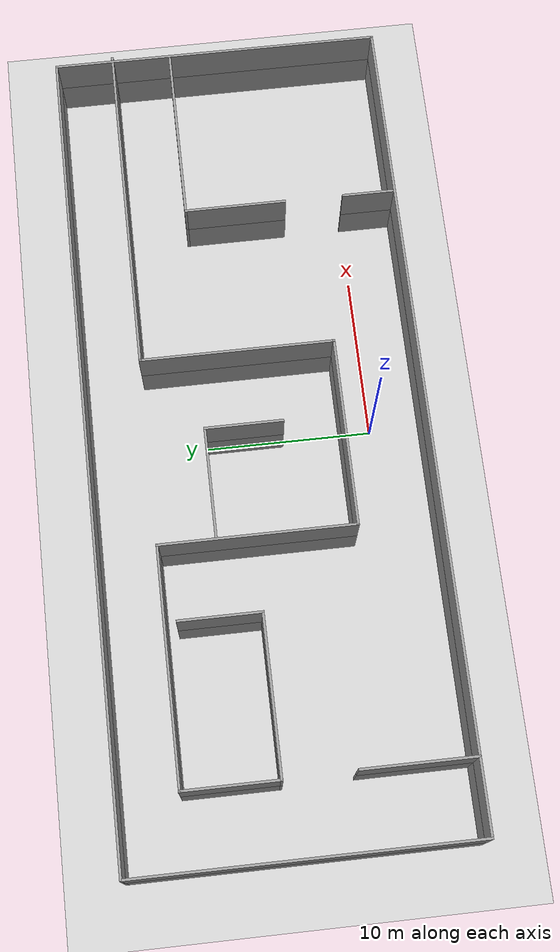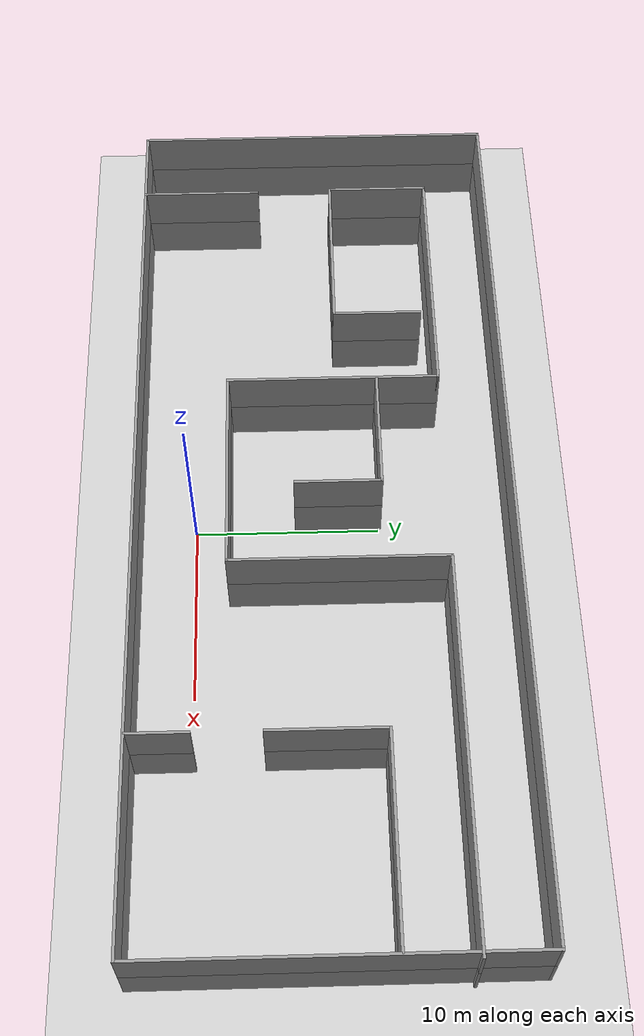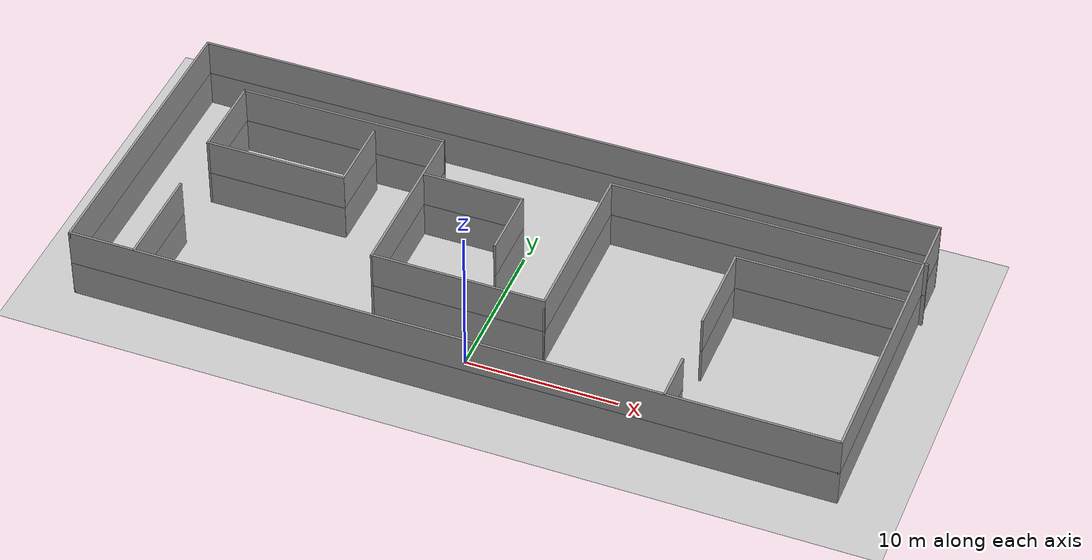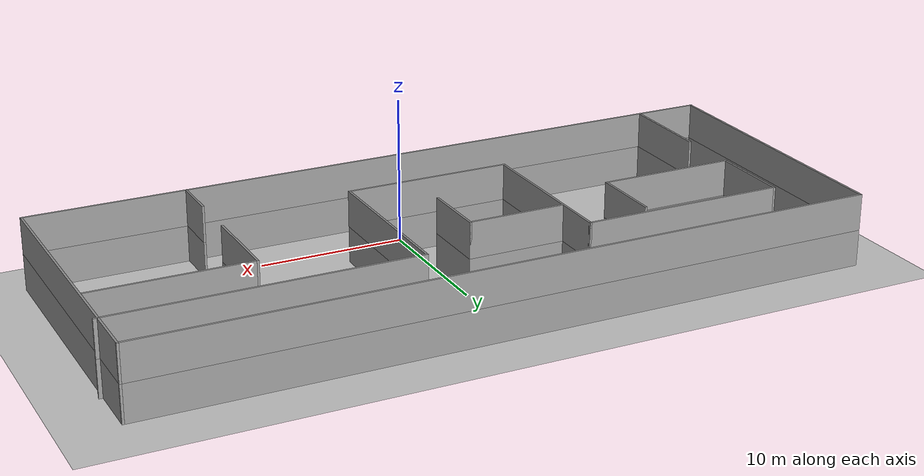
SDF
<sdf version="1.6">
 <world name="default">
  <light name="sun" type="directional">
   <pose>0 0 10 0 -0 0</pose>
   <diffuse>0.8 0.8 0.8 1</diffuse>
   <specular>0.2 0.2 0.2 1</specular>
   <attenuation>
    <range>1000</range>
    <constant>0.9</constant>
    <linear>0.01</linear>
    <quadratic>0.001</quadratic>
   </attenuation>
   <direction>-0.5 0.1 -0.9</direction>
  </light>
  <model name="ground_plane">
   <static>1</static>
   <link name="link">
    <collision name="collision">
     <geometry><plane><normal>0 0 1</normal><size>100 100</size></plane></geometry>
     <surface><friction><ode><mu>100</mu><mu2>50</mu2></ode></friction></surface>
    </collision>
    <visual name="visual">
     <cast_shadows>0</cast_shadows>
     <geometry><plane><normal>0 0 1</normal><size>100 100</size></plane></geometry>
     <material>
      <script><uri>file://media/materials/scripts/gazebo.material</uri><name>Gazebo/Grey</name></script>
     </material>
    </visual>
   </link>
  </model>
  <gravity>0 0 -9.8</gravity>
  <magnetic_field>6e-06 2.3e-05 -4.2e-05</magnetic_field>
  <atmosphere type="adiabatic"/>
  <physics name="default_physics" default="0" type="ode">
   <max_step_size>0.001</max_step_size>
   <real_time_factor>1</real_time_factor>
   <real_time_update_rate>1000</real_time_update_rate>
  </physics>
  <scene><ambient>0.4 0.4 0.4 1</ambient><background>0.7 0.7 0.7 1</background><shadows>1</shadows></scene>
  <audio><device>default</device></audio>
  <spherical_coordinates>
   <surface_model>EARTH_WGS84</surface_model>
   <latitude_deg>0</latitude_deg>
   <longitude_deg>0</longitude_deg>
   <elevation>0</elevation>
   <heading_deg>0</heading_deg>
  </spherical_coordinates>
  <model name="ExploringOffice5">
   <pose>0 7 0 0 -0 0</pose>
   <link name="Wall_0">
    <collision name="Wall_0_Collision">
     <geometry><box><size>50 0.15 2.5</size></box></geometry>
     <pose>0 0 1.25 0 -0 0</pose>
    </collision>
    <visual name="Wall_0_Visual">
     <pose>0 0 1.25 0 -0 0</pose>
     <geometry><box><size>50 0.15 2.5</size></box></geometry>
     <material>
      <script><uri>file://media/materials/scripts/gazebo.material</uri><name>Gazebo/Grey</name></script>
      <ambient>1 1 1 1</ambient>
     </material>
     <meta><layer>0</layer></meta>
    </visual>
    <pose>-0.122376 -10.05 0 0 -0 0</pose>
   </link>
   <link name="Wall_1">
    <collision name="Wall_1_Collision">
     <geometry><box><size>20.25 0.15 2.5</size></box></geometry>
     <pose>0 0 1.25 0 -0 0</pose>
    </collision>
    <visual name="Wall_1_Visual">
     <pose>0 0 1.25 0 -0 0</pose>
     <geometry><box><size>20.25 0.15 2.5</size></box></geometry>
     <material>
      <script><uri>file://media/materials/scripts/gazebo.material</uri><name>Gazebo/Grey</name></script>
      <ambient>1 1 1 1</ambient>
     </material>
     <meta><layer>0</layer></meta>
    </visual>
    <pose>24.8026 -0 0 0 -0 1.5708</pose>
   </link>
   <link name="Wall_10">
    <collision name="Wall_10_Collision">
     <geometry><box><size>5.75 0.15 2.5</size></box></geometry>
     <pose>0 0 1.25 0 -0 0</pose>
    </collision>
    <visual name="Wall_10_Visual">
     <pose>0 0 1.25 0 -0 0</pose>
     <geometry><box><size>5.75 0.15 2.5</size></box></geometry>
     <material>
      <script><uri>file://media/materials/scripts/gazebo.material</uri><name>Gazebo/Grey</name></script>
      <ambient>1 1 1 1</ambient>
     </material>
     <meta><layer>0</layer></meta>
    </visual>
    <pose>-20.7526 3.69277 0 0 -0 1.5708</pose>
   </link>
   <link name="Wall_11">
    <collision name="Wall_11_Collision">
     <geometry><box><size>14 0.15 2.5</size></box></geometry>
     <pose>0 0 1.25 0 -0 0</pose>
    </collision>
    <visual name="Wall_11_Visual">
     <pose>0 0 1.25 0 -0 0</pose>
     <geometry><box><size>14 0.15 2.5</size></box></geometry>
     <material>
      <script><uri>file://media/materials/scripts/gazebo.material</uri><name>Gazebo/Grey</name></script>
      <ambient>1 1 1 1</ambient>
     </material>
     <meta><layer>0</layer></meta>
    </visual>
    <pose>-13.8276 6.49277 0 0 -0 0</pose>
   </link>
   <link name="Wall_12">
    <collision name="Wall_12_Collision">
     <geometry><box><size>11.75 0.15 2.5</size></box></geometry>
     <pose>0 0 1.25 0 -0 0</pose>
    </collision>
    <visual name="Wall_12_Visual">
     <pose>0 0 1.25 0 -0 0</pose>
     <geometry><box><size>11.75 0.15 2.5</size></box></geometry>
     <material>
      <script><uri>file://media/materials/scripts/gazebo.material</uri><name>Gazebo/Grey</name></script>
      <ambient>1 1 1 1</ambient>
     </material>
     <meta><layer>0</layer></meta>
    </visual>
    <pose>-6.90262 0.692768 0 0 -0 -1.5708</pose>
   </link>
   <link name="Wall_13">
    <collision name="Wall_13_Collision">
     <geometry><box><size>11.5 0.15 2.5</size></box></geometry>
     <pose>0 0 1.25 0 -0 0</pose>
    </collision>
    <visual name="Wall_13_Visual">
     <pose>0 0 1.25 0 -0 0</pose>
     <geometry><box><size>11.5 0.15 2.5</size></box></geometry>
     <material>
      <script><uri>file://media/materials/scripts/gazebo.material</uri><name>Gazebo/Grey</name></script>
      <ambient>1 1 1 1</ambient>
     </material>
     <meta><layer>0</layer></meta>
    </visual>
    <pose>-1.22762 -5.10723 0 0 -0 0</pose>
   </link>
   <link name="Wall_14">
    <collision name="Wall_14_Collision">
     <geometry><box><size>11.75 0.15 2.5</size></box></geometry>
     <pose>0 0 1.25 0 -0 0</pose>
    </collision>
    <visual name="Wall_14_Visual">
     <pose>0 0 1.25 0 -0 0</pose>
     <geometry><box><size>11.75 0.15 2.5</size></box></geometry>
     <material>
      <script><uri>file://media/materials/scripts/gazebo.material</uri><name>Gazebo/Grey</name></script>
      <ambient>1 1 1 1</ambient>
     </material>
     <meta><layer>0</layer></meta>
    </visual>
    <pose>4.44738 0.692768 0 0 -0 1.5708</pose>
   </link>
   <link name="Wall_15">
    <collision name="Wall_15_Collision">
     <geometry><box><size>20.75 0.15 2.5</size></box></geometry>
     <pose>0 0 1.25 0 -0 0</pose>
    </collision>
    <visual name="Wall_15_Visual">
     <pose>0 0 1.25 0 -0 0</pose>
     <geometry><box><size>20.75 0.15 2.5</size></box></geometry>
     <material>
      <script><uri>file://media/materials/scripts/gazebo.material</uri><name>Gazebo/Grey</name></script>
      <ambient>1 1 1 1</ambient>
     </material>
     <meta><layer>0</layer></meta>
    </visual>
    <pose>14.7474 6.49277 0 0 -0 0</pose>
   </link>
   <link name="Wall_17">
    <collision name="Wall_17_Collision">
     <geometry><box><size>6.75 0.15 2.5</size></box></geometry>
     <pose>0 0 1.25 0 -0 0</pose>
    </collision>
    <visual name="Wall_17_Visual">
     <pose>0 0 1.25 0 -0 0</pose>
     <geometry><box><size>6.75 0.15 2.5</size></box></geometry>
     <material>
      <script><uri>file://media/materials/scripts/gazebo.material</uri><name>Gazebo/Grey</name></script>
      <ambient>1 1 1 1</ambient>
     </material>
     <meta><layer>0</layer></meta>
    </visual>
    <pose>-3.50141 3.08637 0 0 -0 0</pose>
   </link>
   <link name="Wall_18">
    <collision name="Wall_18_Collision">
     <geometry><box><size>4.75 0.15 2.5</size></box></geometry>
     <pose>0 0 1.25 0 -0 0</pose>
    </collision>
    <visual name="Wall_18_Visual">
     <pose>0 0 1.25 0 -0 0</pose>
     <geometry><box><size>4.75 0.15 2.5</size></box></geometry>
     <material>
      <script><uri>file://media/materials/scripts/gazebo.material</uri><name>Gazebo/Grey</name></script>
      <ambient>1 1 1 1</ambient>
     </material>
     <meta><layer>0</layer></meta>
    </visual>
    <pose>-0.20141 0.786371 0 0 -0 -1.5708</pose>
   </link>
   <link name="Wall_2">
    <collision name="Wall_2_Collision">
     <geometry><box><size>50 0.15 2.5</size></box></geometry>
     <pose>0 0 1.25 0 -0 0</pose>
    </collision>
    <visual name="Wall_2_Visual">
     <pose>0 0 1.25 0 -0 0</pose>
     <geometry><box><size>50 0.15 2.5</size></box></geometry>
     <material>
      <script><uri>file://media/materials/scripts/gazebo.material</uri><name>Gazebo/Grey</name></script>
      <ambient>1 1 1 1</ambient>
     </material>
     <meta><layer>0</layer></meta>
    </visual>
    <pose>-0.122376 10.05 0 0 -0 3.14159</pose>
   </link>
   <link name="Wall_20">
    <collision name="Wall_20_Collision">
     <geometry><box><size>11 0.15 2.5</size></box></geometry>
     <pose>0 0 1.25 0 -0 0</pose>
    </collision>
    <visual name="Wall_20_Visual">
     <pose>0 0 1.25 0 -0 0</pose>
     <geometry><box><size>11 0.15 2.5</size></box></geometry>
     <material>
      <script><uri>file://media/materials/scripts/gazebo.material</uri><name>Gazebo/Grey</name></script>
      <ambient>1 1 1 1</ambient>
     </material>
     <meta><layer>0</layer></meta>
    </visual>
    <pose>19.3291 2.87236 0 0 -0 0</pose>
   </link>
   <link name="Wall_22">
    <collision name="Wall_22_Collision">
     <geometry><box><size>6.25 0.15 2.5</size></box></geometry>
     <pose>0 0 1.25 0 -0 0</pose>
    </collision>
    <visual name="Wall_22_Visual">
     <pose>0 0 1.25 0 -0 0</pose>
     <geometry><box><size>6.25 0.15 2.5</size></box></geometry>
     <material>
      <script><uri>file://media/materials/scripts/gazebo.material</uri><name>Gazebo/Grey</name></script>
      <ambient>1 1 1 1</ambient>
     </material>
     <meta><layer>0</layer></meta>
    </visual>
    <pose>13.9041 -0.177639 0 0 -0 -1.5708</pose>
   </link>
   <link name="Wall_26">
    <collision name="Wall_26_Collision">
     <geometry><box><size>3.25 0.15 2.5</size></box></geometry>
     <pose>0 0 1.25 0 -0 0</pose>
    </collision>
    <visual name="Wall_26_Visual">
     <pose>0 0 1.25 0 -0 0</pose>
     <geometry><box><size>3.25 0.15 2.5</size></box></geometry>
     <material>
      <script><uri>file://media/materials/scripts/gazebo.material</uri><name>Gazebo/Grey</name></script>
      <ambient>1 1 1 1</ambient>
     </material>
     <meta><layer>0</layer></meta>
    </visual>
    <pose>13.898 -8.42714 0 0 -0 -1.5708</pose>
   </link>
   <link name="Wall_5">
    <collision name="Wall_5_Collision">
     <geometry><box><size>20.25 0.15 2.5</size></box></geometry>
     <pose>0 0 1.25 0 -0 0</pose>
    </collision>
    <visual name="Wall_5_Visual">
     <pose>0 0 1.25 0 -0 0</pose>
     <geometry><box><size>20.25 0.15 2.5</size></box></geometry>
     <material>
      <script><uri>file://media/materials/scripts/gazebo.material</uri><name>Gazebo/Grey</name></script>
      <ambient>1 1 1 1</ambient>
     </material>
     <meta><layer>0</layer></meta>
    </visual>
    <pose>-25.0474 -0 0 0 -0 -1.5708</pose>
   </link>
   <link name="Wall_7">
    <collision name="Wall_7_Collision">
     <geometry><box><size>6.75 0.15 2.5</size></box></geometry>
     <pose>0 0 1.25 0 -0 0</pose>
    </collision>
    <visual name="Wall_7_Visual">
     <pose>0 0 1.25 0 -0 0</pose>
     <geometry><box><size>6.75 0.15 2.5</size></box></geometry>
     <material>
      <script><uri>file://media/materials/scripts/gazebo.material</uri><name>Gazebo/Grey</name></script>
      <ambient>1 1 1 1</ambient>
     </material>
     <meta><layer>0</layer></meta>
    </visual>
    <pose>-20.6586 -6.72174 0 0 -0 1.5708</pose>
   </link>
   <link name="Wall_9">
    <collision name="Wall_9_Collision">
     <geometry><box><size>9.5 0.15 2.5</size></box></geometry>
     <pose>0 0 1.25 0 -0 0</pose>
    </collision>
    <visual name="Wall_9_Visual">
     <pose>0 0 1.25 0 -0 0</pose>
     <geometry><box><size>9.5 0.15 2.5</size></box></geometry>
     <material>
      <script><uri>file://media/materials/scripts/gazebo.material</uri><name>Gazebo/Grey</name></script>
      <ambient>1 1 1 1</ambient>
     </material>
     <meta><layer>0</layer></meta>
    </visual>
    <pose>-16.0776 0.892768 0 0 -0 3.14159</pose>
   </link>
   <static>1</static>
  </model>
  <model name="ExploringOffice5_0">
   <pose>0 7 2.5 0 -0 0</pose>
   <link name="Wall_0">
    <collision name="Wall_0_Collision">
     <geometry><box><size>50 0.15 2.5</size></box></geometry>
     <pose>0 0 1.25 0 -0 0</pose>
    </collision>
    <visual name="Wall_0_Visual">
     <pose>0 0 1.25 0 -0 0</pose>
     <geometry><box><size>50 0.15 2.5</size></box></geometry>
     <material>
      <script><uri>file://media/materials/scripts/gazebo.material</uri><name>Gazebo/Grey</name></script>
      <ambient>1 1 1 1</ambient>
     </material>
     <meta><layer>0</layer></meta>
    </visual>
    <pose>-0.122376 -10.05 0 0 -0 0</pose>
   </link>
   <link name="Wall_1">
    <collision name="Wall_1_Collision">
     <geometry><box><size>20.25 0.15 2.5</size></box></geometry>
     <pose>0 0 1.25 0 -0 0</pose>
    </collision>
    <visual name="Wall_1_Visual">
     <pose>0 0 1.25 0 -0 0</pose>
     <geometry><box><size>20.25 0.15 2.5</size></box></geometry>
     <material>
      <script><uri>file://media/materials/scripts/gazebo.material</uri><name>Gazebo/Grey</name></script>
      <ambient>1 1 1 1</ambient>
     </material>
     <meta><layer>0</layer></meta>
    </visual>
    <pose>24.8026 -0 0 0 -0 1.5708</pose>
   </link>
   <link name="Wall_10">
    <collision name="Wall_10_Collision">
     <geometry><box><size>5.75 0.15 2.5</size></box></geometry>
     <pose>0 0 1.25 0 -0 0</pose>
    </collision>
    <visual name="Wall_10_Visual">
     <pose>0 0 1.25 0 -0 0</pose>
     <geometry><box><size>5.75 0.15 2.5</size></box></geometry>
     <material>
      <script><uri>file://media/materials/scripts/gazebo.material</uri><name>Gazebo/Grey</name></script>
      <ambient>1 1 1 1</ambient>
     </material>
     <meta><layer>0</layer></meta>
    </visual>
    <pose>-20.7526 3.69277 0 0 -0 1.5708</pose>
   </link>
   <link name="Wall_11">
    <collision name="Wall_11_Collision">
     <geometry><box><size>14 0.15 2.5</size></box></geometry>
     <pose>0 0 1.25 0 -0 0</pose>
    </collision>
    <visual name="Wall_11_Visual">
     <pose>0 0 1.25 0 -0 0</pose>
     <geometry><box><size>14 0.15 2.5</size></box></geometry>
     <material>
      <script><uri>file://media/materials/scripts/gazebo.material</uri><name>Gazebo/Grey</name></script>
      <ambient>1 1 1 1</ambient>
     </material>
     <meta><layer>0</layer></meta>
    </visual>
    <pose>-13.8276 6.49277 0 0 -0 0</pose>
   </link>
   <link name="Wall_12">
    <collision name="Wall_12_Collision">
     <geometry><box><size>11.75 0.15 2.5</size></box></geometry>
     <pose>0 0 1.25 0 -0 0</pose>
    </collision>
    <visual name="Wall_12_Visual">
     <pose>0 0 1.25 0 -0 0</pose>
     <geometry><box><size>11.75 0.15 2.5</size></box></geometry>
     <material>
      <script><uri>file://media/materials/scripts/gazebo.material</uri><name>Gazebo/Grey</name></script>
      <ambient>1 1 1 1</ambient>
     </material>
     <meta><layer>0</layer></meta>
    </visual>
    <pose>-6.90262 0.692768 0 0 -0 -1.5708</pose>
   </link>
   <link name="Wall_13">
    <collision name="Wall_13_Collision">
     <geometry><box><size>11.5 0.15 2.5</size></box></geometry>
     <pose>0 0 1.25 0 -0 0</pose>
    </collision>
    <visual name="Wall_13_Visual">
     <pose>0 0 1.25 0 -0 0</pose>
     <geometry><box><size>11.5 0.15 2.5</size></box></geometry>
     <material>
      <script><uri>file://media/materials/scripts/gazebo.material</uri><name>Gazebo/Grey</name></script>
      <ambient>1 1 1 1</ambient>
     </material>
     <meta><layer>0</layer></meta>
    </visual>
    <pose>-1.22762 -5.10723 0 0 -0 0</pose>
   </link>
   <link name="Wall_14">
    <collision name="Wall_14_Collision">
     <geometry><box><size>11.75 0.15 2.5</size></box></geometry>
     <pose>0 0 1.25 0 -0 0</pose>
    </collision>
    <visual name="Wall_14_Visual">
     <pose>0 0 1.25 0 -0 0</pose>
     <geometry><box><size>11.75 0.15 2.5</size></box></geometry>
     <material>
      <script><uri>file://media/materials/scripts/gazebo.material</uri><name>Gazebo/Grey</name></script>
      <ambient>1 1 1 1</ambient>
     </material>
     <meta><layer>0</layer></meta>
    </visual>
    <pose>4.44738 0.692768 0 0 -0 1.5708</pose>
   </link>
   <link name="Wall_15">
    <collision name="Wall_15_Collision">
     <geometry><box><size>20.75 0.15 2.5</size></box></geometry>
     <pose>0 0 1.25 0 -0 0</pose>
    </collision>
    <visual name="Wall_15_Visual">
     <pose>0 0 1.25 0 -0 0</pose>
     <geometry><box><size>20.75 0.15 2.5</size></box></geometry>
     <material>
      <script><uri>file://media/materials/scripts/gazebo.material</uri><name>Gazebo/Grey</name></script>
      <ambient>1 1 1 1</ambient>
     </material>
     <meta><layer>0</layer></meta>
    </visual>
    <pose>14.7474 6.49277 0 0 -0 0</pose>
   </link>
   <link name="Wall_17">
    <collision name="Wall_17_Collision">
     <geometry><box><size>6.75 0.15 2.5</size></box></geometry>
     <pose>0 0 1.25 0 -0 0</pose>
    </collision>
    <visual name="Wall_17_Visual">
     <pose>0 0 1.25 0 -0 0</pose>
     <geometry><box><size>6.75 0.15 2.5</size></box></geometry>
     <material>
      <script><uri>file://media/materials/scripts/gazebo.material</uri><name>Gazebo/Grey</name></script>
      <ambient>1 1 1 1</ambient>
     </material>
     <meta><layer>0</layer></meta>
    </visual>
    <pose>-3.50141 3.08637 0 0 -0 0</pose>
   </link>
   <link name="Wall_18">
    <collision name="Wall_18_Collision">
     <geometry><box><size>4.75 0.15 2.5</size></box></geometry>
     <pose>0 0 1.25 0 -0 0</pose>
    </collision>
    <visual name="Wall_18_Visual">
     <pose>0 0 1.25 0 -0 0</pose>
     <geometry><box><size>4.75 0.15 2.5</size></box></geometry>
     <material>
      <script><uri>file://media/materials/scripts/gazebo.material</uri><name>Gazebo/Grey</name></script>
      <ambient>1 1 1 1</ambient>
     </material>
     <meta><layer>0</layer></meta>
    </visual>
    <pose>-0.20141 0.786371 0 0 -0 -1.5708</pose>
   </link>
   <link name="Wall_2">
    <collision name="Wall_2_Collision">
     <geometry><box><size>50 0.15 2.5</size></box></geometry>
     <pose>0 0 1.25 0 -0 0</pose>
    </collision>
    <visual name="Wall_2_Visual">
     <pose>0 0 1.25 0 -0 0</pose>
     <geometry><box><size>50 0.15 2.5</size></box></geometry>
     <material>
      <script><uri>file://media/materials/scripts/gazebo.material</uri><name>Gazebo/Grey</name></script>
      <ambient>1 1 1 1</ambient>
     </material>
     <meta><layer>0</layer></meta>
    </visual>
    <pose>-0.122376 10.05 0 0 -0 3.14159</pose>
   </link>
   <link name="Wall_20">
    <collision name="Wall_20_Collision">
     <geometry><box><size>11 0.15 2.5</size></box></geometry>
     <pose>0 0 1.25 0 -0 0</pose>
    </collision>
    <visual name="Wall_20_Visual">
     <pose>0 0 1.25 0 -0 0</pose>
     <geometry><box><size>11 0.15 2.5</size></box></geometry>
     <material>
      <script><uri>file://media/materials/scripts/gazebo.material</uri><name>Gazebo/Grey</name></script>
      <ambient>1 1 1 1</ambient>
     </material>
     <meta><layer>0</layer></meta>
    </visual>
    <pose>19.3291 2.87236 0 0 -0 0</pose>
   </link>
   <link name="Wall_22">
    <collision name="Wall_22_Collision">
     <geometry><box><size>6.25 0.15 2.5</size></box></geometry>
     <pose>0 0 1.25 0 -0 0</pose>
    </collision>
    <visual name="Wall_22_Visual">
     <pose>0 0 1.25 0 -0 0</pose>
     <geometry><box><size>6.25 0.15 2.5</size></box></geometry>
     <material>
      <script><uri>file://media/materials/scripts/gazebo.material</uri><name>Gazebo/Grey</name></script>
      <ambient>1 1 1 1</ambient>
     </material>
     <meta><layer>0</layer></meta>
    </visual>
    <pose>13.9041 -0.177639 0 0 -0 -1.5708</pose>
   </link>
   <link name="Wall_26">
    <collision name="Wall_26_Collision">
     <geometry><box><size>3.25 0.15 2.5</size></box></geometry>
     <pose>0 0 1.25 0 -0 0</pose>
    </collision>
    <visual name="Wall_26_Visual">
     <pose>0 0 1.25 0 -0 0</pose>
     <geometry><box><size>3.25 0.15 2.5</size></box></geometry>
     <material>
      <script><uri>file://media/materials/scripts/gazebo.material</uri><name>Gazebo/Grey</name></script>
      <ambient>1 1 1 1</ambient>
     </material>
     <meta><layer>0</layer></meta>
    </visual>
    <pose>13.898 -8.42714 0 0 -0 -1.5708</pose>
   </link>
   <link name="Wall_5">
    <collision name="Wall_5_Collision">
     <geometry><box><size>20.25 0.15 2.5</size></box></geometry>
     <pose>0 0 1.25 0 -0 0</pose>
    </collision>
    <visual name="Wall_5_Visual">
     <pose>0 0 1.25 0 -0 0</pose>
     <geometry><box><size>20.25 0.15 2.5</size></box></geometry>
     <material>
      <script><uri>file://media/materials/scripts/gazebo.material</uri><name>Gazebo/Grey</name></script>
      <ambient>1 1 1 1</ambient>
     </material>
     <meta><layer>0</layer></meta>
    </visual>
    <pose>-25.0474 -0 0 0 -0 -1.5708</pose>
   </link>
   <link name="Wall_7">
    <collision name="Wall_7_Collision">
     <geometry><box><size>6.75 0.15 2.5</size></box></geometry>
     <pose>0 0 1.25 0 -0 0</pose>
    </collision>
    <visual name="Wall_7_Visual">
     <pose>0 0 1.25 0 -0 0</pose>
     <geometry><box><size>6.75 0.15 2.5</size></box></geometry>
     <material>
      <script><uri>file://media/materials/scripts/gazebo.material</uri><name>Gazebo/Grey</name></script>
      <ambient>1 1 1 1</ambient>
     </material>
     <meta><layer>0</layer></meta>
    </visual>
    <pose>-20.6586 -6.72174 0 0 -0 1.5708</pose>
   </link>
   <link name="Wall_9">
    <collision name="Wall_9_Collision">
     <geometry><box><size>9.5 0.15 2.5</size></box></geometry>
     <pose>0 0 1.25 0 -0 0</pose>
    </collision>
    <visual name="Wall_9_Visual">
     <pose>0 0 1.25 0 -0 0</pose>
     <geometry><box><size>9.5 0.15 2.5</size></box></geometry>
     <material>
      <script><uri>file://media/materials/scripts/gazebo.material</uri><name>Gazebo/Grey</name></script>
      <ambient>1 1 1 1</ambient>
     </material>
     <meta><layer>0</layer></meta>
    </visual>
    <pose>-16.0776 0.892768 0 0 -0 3.14159</pose>
   </link>
   <static>1</static>
  </model>
  <model name="5mWall">
   <pose>-11.4018 10.3244 0 0 -0 0</pose>
   <link name="Wall_0">
    <collision name="Wall_0_Collision">
     <geometry><box><size>5 0.15 2.5</size></box></geometry>
     <pose>0 0 1.25 0 -0 0</pose>
    </collision>
    <visual name="Wall_0_Visual">
     <pose>0 0 1.25 0 -0 0</pose>
     <geometry><box><size>5 0.15 2.5</size></box></geometry>
     <material>
      <script><uri>file://media/materials/scripts/gazebo.material</uri><name>Gazebo/Grey</name></script>
      <ambient>1 1 1 1</ambient>
     </material>
     <meta><layer>0</layer></meta>
    </visual>
    <pose>0 -0 0 0 -0 1.5708</pose>
   </link>
   <static>1</static>
  </model>
  <model name="5mWall_0">
   <pose>-11.4 10.32 2.5 0 -0 0</pose>
   <link name="Wall_0">
    <collision name="Wall_0_Collision">
     <geometry><box><size>5 0.15 2.5</size></box></geometry>
     <pose>0 0 1.25 0 -0 0</pose>
    </collision>
    <visual name="Wall_0_Visual">
     <pose>0 0 1.25 0 -0 0</pose>
     <geometry><box><size>5 0.15 2.5</size></box></geometry>
     <material>
      <script><uri>file://media/materials/scripts/gazebo.material</uri><name>Gazebo/Grey</name></script>
      <ambient>1 1 1 1</ambient>
     </material>
     <meta><layer>0</layer></meta>
    </visual>
    <pose>0 -0 0 0 -0 1.5708</pose>
   </link>
   <static>1</static>
  </model>
 </world>
</sdf>
